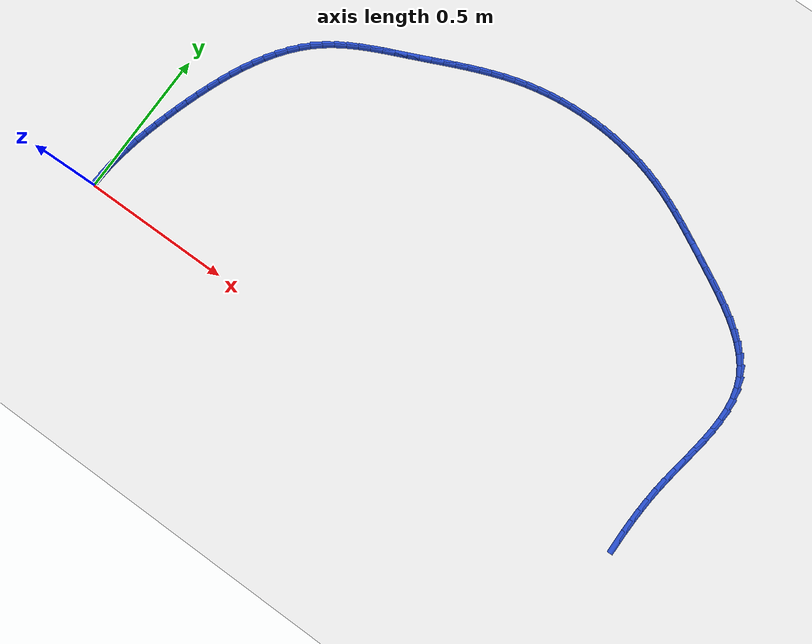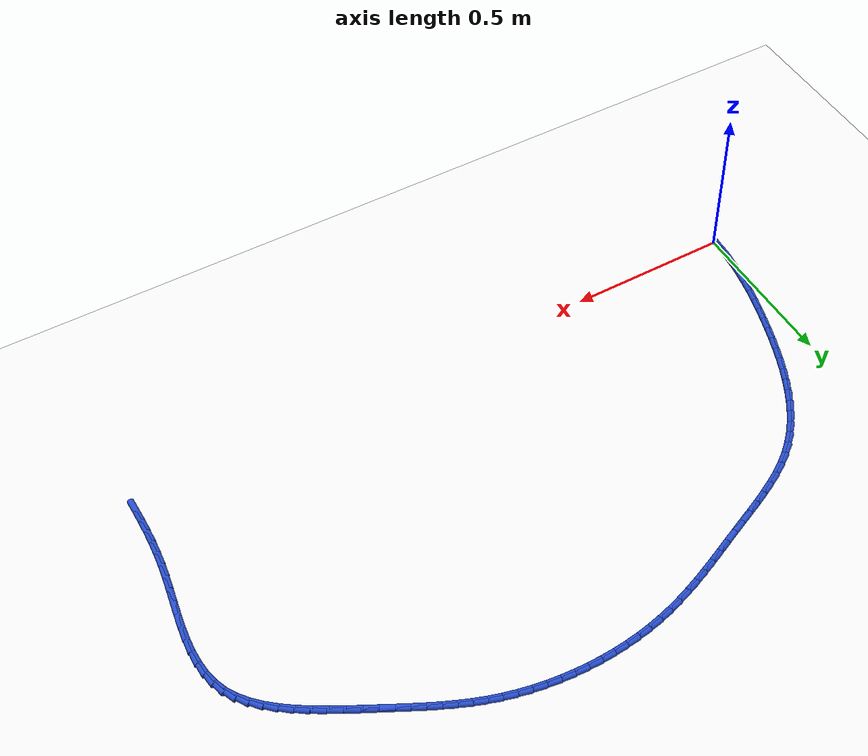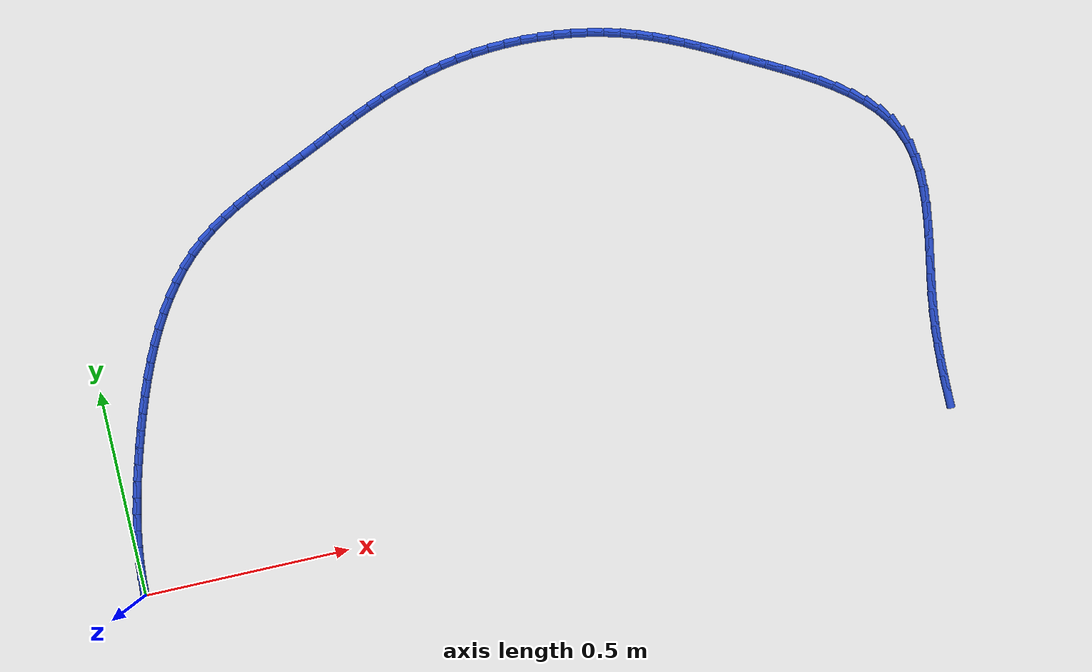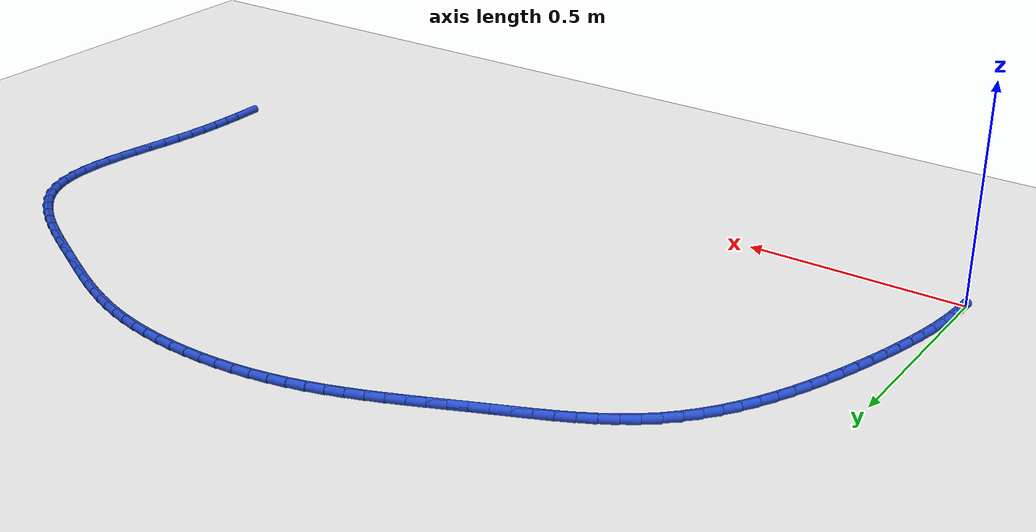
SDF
<sdf version="1.6">
 <world name="default">
  <model name="ground_plane">
   <static>1</static>
   <link name="link">
    <collision name="collision">
     <geometry><plane><normal>0 0 1</normal><size>100 100</size></plane></geometry>
     <surface><friction><ode><mu>100</mu><mu2>50</mu2></ode></friction></surface>
    </collision>
    <visual name="visual">
     <cast_shadows>0</cast_shadows>
     <geometry><plane><normal>0 0 1</normal><size>100 100</size></plane></geometry>
     <material>
      <script><uri>file://media/materials/scripts/gazebo.material</uri><name>Gazebo/WhiteGlow</name></script>
     </material>
    </visual>
   </link>
  </model>
  <model name="line">
   <link name="link_1">
    <pose>0.0013825050643212892 0.03906894730974229 0.01 0 1.57 1.4908828772308236</pose>
    <collision name="collision">
     <geometry><cylinder><radius>0.01</radius><length>0.08</length></cylinder></geometry>
    </collision>
    <visual name="visual">
     <material>
      <script><name>Gazebo/Blue</name><uri>file://media/materials/scripts/gazebo.material</uri></script>
     </material>
     <geometry><cylinder><radius>0.01</radius><length>0.08</length></cylinder></geometry>
    </visual>
   </link>
   <link name="link_2">
    <pose>0.004506165908271949 0.07807375350420086 0.01 0 1.57 1.4498264423140341</pose>
    <collision name="collision">
     <geometry><cylinder><radius>0.01</radius><length>0.08</length></cylinder></geometry>
    </collision>
    <visual name="visual">
     <material>
      <script><name>Gazebo/Blue</name><uri>file://media/materials/scripts/gazebo.material</uri></script>
     </material>
     <geometry><cylinder><radius>0.01</radius><length>0.08</length></cylinder></geometry>
    </visual>
   </link>
   <link name="link_3">
    <pose>0.009242213815881412 0.11703322982333247 0.01 0 1.57 1.4123816714214383</pose>
    <collision name="collision">
     <geometry><cylinder><radius>0.01</radius><length>0.08</length></cylinder></geometry>
    </collision>
    <visual name="visual">
     <material>
      <script><name>Gazebo/Blue</name><uri>file://media/materials/scripts/gazebo.material</uri></script>
     </material>
     <geometry><cylinder><radius>0.01</radius><length>0.08</length></cylinder></geometry>
    </visual>
   </link>
   <link name="link_4">
    <pose>0.015461880071179107 0.1559661875070941 0.01 0 1.57 1.3786067874616756</pose>
    <collision name="collision">
     <geometry><cylinder><radius>0.01</radius><length>0.08</length></cylinder></geometry>
    </collision>
    <visual name="visual">
     <material>
      <script><name>Gazebo/Blue</name><uri>file://media/materials/scripts/gazebo.material</uri></script>
     </material>
     <geometry><cylinder><radius>0.01</radius><length>0.08</length></cylinder></geometry>
    </visual>
   </link>
   <link name="link_5">
    <pose>0.023036395958194462 0.19489143779544235 0.01 0 1.57 1.34850630927568</pose>
    <collision name="collision">
     <geometry><cylinder><radius>0.01</radius><length>0.08</length></cylinder></geometry>
    </collision>
    <visual name="visual">
     <material>
      <script><name>Gazebo/Blue</name><uri>file://media/materials/scripts/gazebo.material</uri></script>
     </material>
     <geometry><cylinder><radius>0.01</radius><length>0.08</length></cylinder></geometry>
    </visual>
   </link>
   <link name="link_6">
    <pose>0.03183699276095692 0.2338277919283341 0.01 0 1.57 1.3220450251470515</pose>
    <collision name="collision">
     <geometry><cylinder><radius>0.01</radius><length>0.08</length></cylinder></geometry>
    </collision>
    <visual name="visual">
     <material>
      <script><name>Gazebo/Blue</name><uri>file://media/materials/scripts/gazebo.material</uri></script>
     </material>
     <geometry><cylinder><radius>0.01</radius><length>0.08</length></cylinder></geometry>
    </visual>
   </link>
   <link name="link_7">
    <pose>0.041734901763495875 0.2727940611457261 0.01 0 1.57 1.2991606508426912</pose>
    <collision name="collision">
     <geometry><cylinder><radius>0.01</radius><length>0.08</length></cylinder></geometry>
    </collision>
    <visual name="visual">
     <material>
      <script><name>Gazebo/Blue</name><uri>file://media/materials/scripts/gazebo.material</uri></script>
     </material>
     <geometry><cylinder><radius>0.01</radius><length>0.08</length></cylinder></geometry>
    </visual>
   </link>
   <link name="link_8">
    <pose>0.052601354249840804 0.3118090566875753 0.01 0 1.57 1.279774628854863</pose>
    <collision name="collision">
     <geometry><cylinder><radius>0.01</radius><length>0.08</length></cylinder></geometry>
    </collision>
    <visual name="visual">
     <material>
      <script><name>Gazebo/Blue</name><uri>file://media/materials/scripts/gazebo.material</uri></script>
     </material>
     <geometry><cylinder><radius>0.01</radius><length>0.08</length></cylinder></geometry>
    </visual>
   </link>
   <link name="link_9">
    <pose>0.06430758150402113 0.35089158979383833 0.01 0 1.57 1.263321220580942</pose>
    <collision name="collision">
     <geometry><cylinder><radius>0.01</radius><length>0.08</length></cylinder></geometry>
    </collision>
    <visual name="visual">
     <material>
      <script><name>Gazebo/Blue</name><uri>file://media/materials/scripts/gazebo.material</uri></script>
     </material>
     <geometry><cylinder><radius>0.01</radius><length>0.08</length></cylinder></geometry>
    </visual>
   </link>
   <link name="link_10">
    <pose>0.07674095066680027 0.3900461623906067 0.01 0 1.57 1.245324803403687</pose>
    <collision name="collision">
     <geometry><cylinder><radius>0.01</radius><length>0.08</length></cylinder></geometry>
    </collision>
    <visual name="visual">
     <material>
      <script><name>Gazebo/Blue</name><uri>file://media/materials/scripts/gazebo.material</uri></script>
     </material>
     <geometry><cylinder><radius>0.01</radius><length>0.08</length></cylinder></geometry>
    </visual>
   </link>
   <link name="link_11">
    <pose>0.08993626492081125 0.4291465297920647 0.01 0 1.57 1.2233031122250573</pose>
    <collision name="collision">
     <geometry><cylinder><radius>0.01</radius><length>0.08</length></cylinder></geometry>
    </collision>
    <visual name="visual">
     <material>
      <script><name>Gazebo/Blue</name><uri>file://media/materials/scripts/gazebo.material</uri></script>
     </material>
     <geometry><cylinder><radius>0.01</radius><length>0.08</length></cylinder></geometry>
    </visual>
   </link>
   <link name="link_12">
    <pose>0.10400731175838522 0.46799640384978175 0.01 0 1.57 1.1970347129776315</pose>
    <collision name="collision">
     <geometry><cylinder><radius>0.01</radius><length>0.08</length></cylinder></geometry>
    </collision>
    <visual name="visual">
     <material>
      <script><name>Gazebo/Blue</name><uri>file://media/materials/scripts/gazebo.material</uri></script>
     </material>
     <geometry><cylinder><radius>0.01</radius><length>0.08</length></cylinder></geometry>
    </visual>
   </link>
   <link name="link_13">
    <pose>0.11906862884791193 0.506398831157519 0.01 0 1.57 1.1662600544415076</pose>
    <collision name="collision">
     <geometry><cylinder><radius>0.01</radius><length>0.08</length></cylinder></geometry>
    </collision>
    <visual name="visual">
     <material>
      <script><name>Gazebo/Blue</name><uri>file://media/materials/scripts/gazebo.material</uri></script>
     </material>
     <geometry><cylinder><radius>0.01</radius><length>0.08</length></cylinder></geometry>
    </visual>
   </link>
   <link name="link_14">
    <pose>0.13523475385778116 0.544156858309038 0.01 0 1.57 1.1306672944568665</pose>
    <collision name="collision">
     <geometry><cylinder><radius>0.01</radius><length>0.08</length></cylinder></geometry>
    </collision>
    <visual name="visual">
     <material>
      <script><name>Gazebo/Blue</name><uri>file://media/materials/scripts/gazebo.material</uri></script>
     </material>
     <geometry><cylinder><radius>0.01</radius><length>0.08</length></cylinder></geometry>
    </visual>
   </link>
   <link name="link_15">
    <pose>0.15262022445638276 0.5810735318981 0.01 0 1.57 1.0899045323295076</pose>
    <collision name="collision">
     <geometry><cylinder><radius>0.01</radius><length>0.08</length></cylinder></geometry>
    </collision>
    <visual name="visual">
     <material>
      <script><name>Gazebo/Blue</name><uri>file://media/materials/scripts/gazebo.material</uri></script>
     </material>
     <geometry><cylinder><radius>0.01</radius><length>0.08</length></cylinder></geometry>
    </visual>
   </link>
   <link name="link_16">
    <pose>0.17133957831210658 0.6169518985184664 0.01 0 1.57 1.0435989721002894</pose>
    <collision name="collision">
     <geometry><cylinder><radius>0.01</radius><length>0.08</length></cylinder></geometry>
    </collision>
    <visual name="visual">
     <material>
      <script><name>Gazebo/Blue</name><uri>file://media/materials/scripts/gazebo.material</uri></script>
     </material>
     <geometry><cylinder><radius>0.01</radius><length>0.08</length></cylinder></geometry>
    </visual>
   </link>
   <link name="link_17">
    <pose>0.19150735309334233 0.6515950047638986 0.01 0 1.57 0.9913863497934005</pose>
    <collision name="collision">
     <geometry><cylinder><radius>0.01</radius><length>0.08</length></cylinder></geometry>
    </collision>
    <visual name="visual">
     <material>
      <script><name>Gazebo/Blue</name><uri>file://media/materials/scripts/gazebo.material</uri></script>
     </material>
     <geometry><cylinder><radius>0.01</radius><length>0.08</length></cylinder></geometry>
    </visual>
   </link>
   <link name="link_18">
    <pose>0.21323808646847983 0.684805897228158 0.01 0 1.57 0.9329540142925298</pose>
    <collision name="collision">
     <geometry><cylinder><radius>0.01</radius><length>0.08</length></cylinder></geometry>
    </collision>
    <visual name="visual">
     <material>
      <script><name>Gazebo/Blue</name><uri>file://media/materials/scripts/gazebo.material</uri></script>
     </material>
     <geometry><cylinder><radius>0.01</radius><length>0.08</length></cylinder></geometry>
    </visual>
   </link>
   <link name="link_19">
    <pose>0.2366463161059089 0.716387622505006 0.01 0 1.57 0.8680999923756387</pose>
    <collision name="collision">
     <geometry><cylinder><radius>0.01</radius><length>0.08</length></cylinder></geometry>
    </collision>
    <visual name="visual">
     <material>
      <script><name>Gazebo/Blue</name><uri>file://media/materials/scripts/gazebo.material</uri></script>
     </material>
     <geometry><cylinder><radius>0.01</radius><length>0.08</length></cylinder></geometry>
    </visual>
   </link>
   <link name="link_20">
    <pose>0.26184657967401925 0.7461432271882036 0.01 0 1.57 0.7968072735817116</pose>
    <collision name="collision">
     <geometry><cylinder><radius>0.01</radius><length>0.08</length></cylinder></geometry>
    </collision>
    <visual name="visual">
     <material>
      <script><name>Gazebo/Blue</name><uri>file://media/materials/scripts/gazebo.material</uri></script>
     </material>
     <geometry><cylinder><radius>0.01</radius><length>0.08</length></cylinder></geometry>
    </visual>
   </link>
   <link name="link_21">
    <pose>0.28895341484120096 0.7738757578715129 0.01 0 1.57 0.7193332785388655</pose>
    <collision name="collision">
     <geometry><cylinder><radius>0.01</radius><length>0.08</length></cylinder></geometry>
    </collision>
    <visual name="visual">
     <material>
      <script><name>Gazebo/Blue</name><uri>file://media/materials/scripts/gazebo.material</uri></script>
     </material>
     <geometry><cylinder><radius>0.01</radius><length>0.08</length></cylinder></geometry>
    </visual>
   </link>
   <link name="link_22">
    <pose>0.31808119799682333 0.7993884625396205 0.01 0 1.57 0.640544846958888</pose>
    <collision name="collision">
     <geometry><cylinder><radius>0.01</radius><length>0.08</length></cylinder></geometry>
    </collision>
    <visual name="visual">
     <material>
      <script><name>Gazebo/Blue</name><uri>file://media/materials/scripts/gazebo.material</uri></script>
     </material>
     <geometry><cylinder><radius>0.01</radius><length>0.08</length></cylinder></geometry>
    </visual>
   </link>
   <link name="link_23">
    <pose>0.34924044235251633 0.8226142842953275 0.01 0 1.57 0.5726735221452041</pose>
    <collision name="collision">
     <geometry><cylinder><radius>0.01</radius><length>0.08</length></cylinder></geometry>
    </collision>
    <visual name="visual">
     <material>
      <script><name>Gazebo/Blue</name><uri>file://media/materials/scripts/gazebo.material</uri></script>
     </material>
     <geometry><cylinder><radius>0.01</radius><length>0.08</length></cylinder></geometry>
    </visual>
   </link>
   <link name="link_24">
    <pose>0.3821593720415288 0.8438386637882926 0.01 0 1.57 0.5176922530987258</pose>
    <collision name="collision">
     <geometry><cylinder><radius>0.01</radius><length>0.08</length></cylinder></geometry>
    </collision>
    <visual name="visual">
     <material>
      <script><name>Gazebo/Blue</name><uri>file://media/materials/scripts/gazebo.material</uri></script>
     </material>
     <geometry><cylinder><radius>0.01</radius><length>0.08</length></cylinder></geometry>
    </visual>
   </link>
   <link name="link_25">
    <pose>0.4165187077536712 0.8634063597522318 0.01 0 1.57 0.47520412315674315</pose>
    <collision name="collision">
     <geometry><cylinder><radius>0.01</radius><length>0.08</length></cylinder></geometry>
    </collision>
    <visual name="visual">
     <material>
      <script><name>Gazebo/Blue</name><uri>file://media/materials/scripts/gazebo.material</uri></script>
     </material>
     <geometry><cylinder><radius>0.01</radius><length>0.08</length></cylinder></geometry>
    </visual>
   </link>
   <link name="link_26">
    <pose>0.45199917017875396 0.8816621309208603 0.01 0 1.57 0.4446733875477434</pose>
    <collision name="collision">
     <geometry><cylinder><radius>0.01</radius><length>0.08</length></cylinder></geometry>
    </collision>
    <visual name="visual">
     <material>
      <script><name>Gazebo/Blue</name><uri>file://media/materials/scripts/gazebo.material</uri></script>
     </material>
     <geometry><cylinder><radius>0.01</radius><length>0.08</length></cylinder></geometry>
    </visual>
   </link>
   <link name="link_27">
    <pose>0.4882814800065874 0.8989507360278943 0.01 0 1.57 0.4256101290940283</pose>
    <collision name="collision">
     <geometry><cylinder><radius>0.01</radius><length>0.08</length></cylinder></geometry>
    </collision>
    <visual name="visual">
     <material>
      <script><name>Gazebo/Blue</name><uri>file://media/materials/scripts/gazebo.material</uri></script>
     </material>
     <geometry><cylinder><radius>0.01</radius><length>0.08</length></cylinder></geometry>
    </visual>
   </link>
   <link name="link_28">
    <pose>0.5250463579269822 0.9156169338070489 0.01 0 1.57 0.4176821834317613</pose>
    <collision name="collision">
     <geometry><cylinder><radius>0.01</radius><length>0.08</length></cylinder></geometry>
    </collision>
    <visual name="visual">
     <material>
      <script><name>Gazebo/Blue</name><uri>file://media/materials/scripts/gazebo.material</uri></script>
     </material>
     <geometry><cylinder><radius>0.01</radius><length>0.08</length></cylinder></geometry>
    </visual>
   </link>
   <link name="link_29">
    <pose>0.5619745246297484 0.9320054829920398 0.01 0 1.57 0.4203912868727868</pose>
    <collision name="collision">
     <geometry><cylinder><radius>0.01</radius><length>0.08</length></cylinder></geometry>
    </collision>
    <visual name="visual">
     <material>
      <script><name>Gazebo/Blue</name><uri>file://media/materials/scripts/gazebo.material</uri></script>
     </material>
     <geometry><cylinder><radius>0.01</radius><length>0.08</length></cylinder></geometry>
    </visual>
   </link>
   <link name="link_30">
    <pose>0.5987564832216699 0.9484485614264324 0.01 0 1.57 0.4255999580675025</pose>
    <collision name="collision">
     <geometry><cylinder><radius>0.01</radius><length>0.08</length></cylinder></geometry>
    </collision>
    <visual name="visual">
     <material>
      <script><name>Gazebo/Blue</name><uri>file://media/materials/scripts/gazebo.material</uri></script>
     </material>
     <geometry><cylinder><radius>0.01</radius><length>0.08</length></cylinder></geometry>
    </visual>
   </link>
   <link name="link_31">
    <pose>0.6352913571693464 0.9650100462018243 0.01 0 1.57 0.42542437116408216</pose>
    <collision name="collision">
     <geometry><cylinder><radius>0.01</radius><length>0.08</length></cylinder></geometry>
    </collision>
    <visual name="visual">
     <material>
      <script><name>Gazebo/Blue</name><uri>file://media/materials/scripts/gazebo.material</uri></script>
     </material>
     <geometry><cylinder><radius>0.01</radius><length>0.08</length></cylinder></geometry>
    </visual>
   </link>
   <link name="link_32">
    <pose>0.671678179160152 0.9814967168077061 0.01 0 1.57 0.4194778309859588</pose>
    <collision name="collision">
     <geometry><cylinder><radius>0.01</radius><length>0.08</length></cylinder></geometry>
    </collision>
    <visual name="visual">
     <material>
      <script><name>Gazebo/Blue</name><uri>file://media/materials/scripts/gazebo.material</uri></script>
     </material>
     <geometry><cylinder><radius>0.01</radius><length>0.08</length></cylinder></geometry>
    </visual>
   </link>
   <link name="link_33">
    <pose>0.7080240210769684 0.9977050137513073 0.01 0 1.57 0.40770161124175586</pose>
    <collision name="collision">
     <geometry><cylinder><radius>0.01</radius><length>0.08</length></cylinder></geometry>
    </collision>
    <visual name="visual">
     <material>
      <script><name>Gazebo/Blue</name><uri>file://media/materials/scripts/gazebo.material</uri></script>
     </material>
     <geometry><cylinder><radius>0.01</radius><length>0.08</length></cylinder></geometry>
    </visual>
   </link>
   <link name="link_34">
    <pose>0.7444359548026763 1.013431377539857 0.01 0 1.57 0.3900558137274472</pose>
    <collision name="collision">
     <geometry><cylinder><radius>0.01</radius><length>0.08</length></cylinder></geometry>
    </collision>
    <visual name="visual">
     <material>
      <script><name>Gazebo/Blue</name><uri>file://media/materials/scripts/gazebo.material</uri></script>
     </material>
     <geometry><cylinder><radius>0.01</radius><length>0.08</length></cylinder></geometry>
    </visual>
   </link>
   <link name="link_35">
    <pose>0.7810210522201568 1.0284722486805846 0.01 0 1.57 0.3665319929024972</pose>
    <collision name="collision">
     <geometry><cylinder><radius>0.01</radius><length>0.08</length></cylinder></geometry>
    </collision>
    <visual name="visual">
     <material>
      <script><name>Gazebo/Blue</name><uri>file://media/materials/scripts/gazebo.material</uri></script>
     </material>
     <geometry><cylinder><radius>0.01</radius><length>0.08</length></cylinder></geometry>
    </visual>
   </link>
   <link name="link_36">
    <pose>0.8178863852122915 1.042624067680719 0.01 0 1.57 0.3371717475668444</pose>
    <collision name="collision">
     <geometry><cylinder><radius>0.01</radius><length>0.08</length></cylinder></geometry>
    </collision>
    <visual name="visual">
     <material>
      <script><name>Gazebo/Blue</name><uri>file://media/materials/scripts/gazebo.material</uri></script>
     </material>
     <geometry><cylinder><radius>0.01</radius><length>0.08</length></cylinder></geometry>
    </visual>
   </link>
   <link name="link_37">
    <pose>0.8551390256619612 1.05568327504749 0.01 0 1.57 0.3020904434956613</pose>
    <collision name="collision">
     <geometry><cylinder><radius>0.01</radius><length>0.08</length></cylinder></geometry>
    </collision>
    <visual name="visual">
     <material>
      <script><name>Gazebo/Blue</name><uri>file://media/materials/scripts/gazebo.material</uri></script>
     </material>
     <geometry><cylinder><radius>0.01</radius><length>0.08</length></cylinder></geometry>
    </visual>
   </link>
   <link name="link_38">
    <pose>0.8928860454520464 1.067446311288126 0.01 0 1.57 0.2615043488212305</pose>
    <collision name="collision">
     <geometry><cylinder><radius>0.01</radius><length>0.08</length></cylinder></geometry>
    </collision>
    <visual name="visual">
     <material>
      <script><name>Gazebo/Blue</name><uri>file://media/materials/scripts/gazebo.material</uri></script>
     </material>
     <geometry><cylinder><radius>0.01</radius><length>0.08</length></cylinder></geometry>
    </visual>
   </link>
   <link name="link_39">
    <pose>0.9312345070458207 1.077709624940949 0.01 0 1.57 0.2169953253717377</pose>
    <collision name="collision">
     <geometry><cylinder><radius>0.01</radius><length>0.08</length></cylinder></geometry>
    </collision>
    <visual name="visual">
     <material>
      <script><name>Gazebo/Blue</name><uri>file://media/materials/scripts/gazebo.material</uri></script>
     </material>
     <geometry><cylinder><radius>0.01</radius><length>0.08</length></cylinder></geometry>
    </visual>
   </link>
   <link name="link_40">
    <pose>0.9702442089245338 1.086309961479969 0.01 0 1.57 0.17281984940199646</pose>
    <collision name="collision">
     <geometry><cylinder><radius>0.01</radius><length>0.08</length></cylinder></geometry>
    </collision>
    <visual name="visual">
     <material>
      <script><name>Gazebo/Blue</name><uri>file://media/materials/scripts/gazebo.material</uri></script>
     </material>
     <geometry><cylinder><radius>0.01</radius><length>0.08</length></cylinder></geometry>
    </visual>
   </link>
   <link name="link_41">
    <pose>1.0098178749165594 1.0932179871136565 0.01 0 1.57 0.12959836551009693</pose>
    <collision name="collision">
     <geometry><cylinder><radius>0.01</radius><length>0.08</length></cylinder></geometry>
    </collision>
    <visual name="visual">
     <material>
      <script><name>Gazebo/Blue</name><uri>file://media/materials/scripts/gazebo.material</uri></script>
     </material>
     <geometry><cylinder><radius>0.01</radius><length>0.08</length></cylinder></geometry>
    </visual>
   </link>
   <link name="link_42">
    <pose>1.0498256403466943 1.0984321527773817 0.01 0 1.57 0.08706738772862936</pose>
    <collision name="collision">
     <geometry><cylinder><radius>0.01</radius><length>0.08</length></cylinder></geometry>
    </collision>
    <visual name="visual">
     <material>
      <script><name>Gazebo/Blue</name><uri>file://media/materials/scripts/gazebo.material</uri></script>
     </material>
     <geometry><cylinder><radius>0.01</radius><length>0.08</length></cylinder></geometry>
    </visual>
   </link>
   <link name="link_43">
    <pose>1.0901376405397374 1.1019509094065185 0.01 0 1.57 0.04496748940232887</pose>
    <collision name="collision">
     <geometry><cylinder><radius>0.01</radius><length>0.08</length></cylinder></geometry>
    </collision>
    <visual name="visual">
     <material>
      <script><name>Gazebo/Blue</name><uri>file://media/materials/scripts/gazebo.material</uri></script>
     </material>
     <geometry><cylinder><radius>0.01</radius><length>0.08</length></cylinder></geometry>
    </visual>
   </link>
   <link name="link_44">
    <pose>1.1306240108204861 1.1037727079364377 0.01 0 1.57 0.003041902837933673</pose>
    <collision name="collision">
     <geometry><cylinder><radius>0.01</radius><length>0.08</length></cylinder></geometry>
    </collision>
    <visual name="visual">
     <material>
      <script><name>Gazebo/Blue</name><uri>file://media/materials/scripts/gazebo.material</uri></script>
     </material>
     <geometry><cylinder><radius>0.01</radius><length>0.08</length></cylinder></geometry>
    </visual>
   </link>
   <link name="link_45">
    <pose>1.171154886513739 1.103895999302512 0.01 0 1.57 -0.038965179030784</pose>
    <collision name="collision">
     <geometry><cylinder><radius>0.01</radius><length>0.08</length></cylinder></geometry>
    </collision>
    <visual name="visual">
     <material>
      <script><name>Gazebo/Blue</name><uri>file://media/materials/scripts/gazebo.material</uri></script>
     </material>
     <geometry><cylinder><radius>0.01</radius><length>0.08</length></cylinder></geometry>
    </visual>
   </link>
   <link name="link_46">
    <pose>1.2116004029442922 1.1023192344401131 0.01 0 1.57 -0.08131042333278853</pose>
    <collision name="collision">
     <geometry><cylinder><radius>0.01</radius><length>0.08</length></cylinder></geometry>
    </collision>
    <visual name="visual">
     <material>
      <script><name>Gazebo/Blue</name><uri>file://media/materials/scripts/gazebo.material</uri></script>
     </material>
     <geometry><cylinder><radius>0.01</radius><length>0.08</length></cylinder></geometry>
    </visual>
   </link>
   <link name="link_47">
    <pose>1.2518306954369451 1.099040864284613 0.01 0 1.57 -0.12425313855654954</pose>
    <collision name="collision">
     <geometry><cylinder><radius>0.01</radius><length>0.08</length></cylinder></geometry>
    </collision>
    <visual name="visual">
     <material>
      <script><name>Gazebo/Blue</name><uri>file://media/materials/scripts/gazebo.material</uri></script>
     </material>
     <geometry><cylinder><radius>0.01</radius><length>0.08</length></cylinder></geometry>
    </visual>
   </link>
   <link name="link_48">
    <pose>1.2917158993164943 1.0940593397713836 0.01 0 1.57 -0.1680568477869703</pose>
    <collision name="collision">
     <geometry><cylinder><radius>0.01</radius><length>0.08</length></cylinder></geometry>
    </collision>
    <visual name="visual">
     <material>
      <script><name>Gazebo/Blue</name><uri>file://media/materials/scripts/gazebo.material</uri></script>
     </material>
     <geometry><cylinder><radius>0.01</radius><length>0.08</length></cylinder></geometry>
    </visual>
   </link>
   <link name="link_49">
    <pose>1.3311261499077385 1.0873731118357974 0.01 0 1.57 -0.2129904571610945</pose>
    <collision name="collision">
     <geometry><cylinder><radius>0.01</radius><length>0.08</length></cylinder></geometry>
    </collision>
    <visual name="visual">
     <material>
      <script><name>Gazebo/Blue</name><uri>file://media/materials/scripts/gazebo.material</uri></script>
     </material>
     <geometry><cylinder><radius>0.01</radius><length>0.08</length></cylinder></geometry>
    </visual>
   </link>
   <link name="link_50">
    <pose>1.3699315825354756 1.0789806314132264 0.01 0 1.57 -0.25932877304138785</pose>
    <collision name="collision">
     <geometry><cylinder><radius>0.01</radius><length>0.08</length></cylinder></geometry>
    </collision>
    <visual name="visual">
     <material>
      <script><name>Gazebo/Blue</name><uri>file://media/materials/scripts/gazebo.material</uri></script>
     </material>
     <geometry><cylinder><radius>0.01</radius><length>0.08</length></cylinder></geometry>
    </visual>
   </link>
   <link name="link_51">
    <pose>1.4080023325245028 1.0688803494390424 0.01 0 1.57 -0.3070932277901556</pose>
    <collision name="collision">
     <geometry><cylinder><radius>0.01</radius><length>0.08</length></cylinder></geometry>
    </collision>
    <visual name="visual">
     <material>
      <script><name>Gazebo/Blue</name><uri>file://media/materials/scripts/gazebo.material</uri></script>
     </material>
     <geometry><cylinder><radius>0.01</radius><length>0.08</length></cylinder></geometry>
    </visual>
   </link>
   <link name="link_52">
    <pose>1.4452216622945886 1.057077153023726 0.01 0 1.57 -0.3525371537069398</pose>
    <collision name="collision">
     <geometry><cylinder><radius>0.01</radius><length>0.08</length></cylinder></geometry>
    </collision>
    <visual name="visual">
     <material>
      <script><name>Gazebo/Blue</name><uri>file://media/materials/scripts/gazebo.material</uri></script>
     </material>
     <geometry><cylinder><radius>0.01</radius><length>0.08</length></cylinder></geometry>
    </visual>
   </link>
   <link name="link_53">
    <pose>1.4816641480213903 1.0436697298357969 0.01 0 1.57 -0.39217549380556954</pose>
    <collision name="collision">
     <geometry><cylinder><radius>0.01</radius><length>0.08</length></cylinder></geometry>
    </collision>
    <visual name="visual">
     <material>
      <script><name>Gazebo/Blue</name><uri>file://media/materials/scripts/gazebo.material</uri></script>
     </material>
     <geometry><cylinder><radius>0.01</radius><length>0.08</length></cylinder></geometry>
    </visual>
   </link>
   <link name="link_54">
    <pose>1.5175490708155777 1.0288277159373782 0.01 0 1.57 -0.4253684738614518</pose>
    <collision name="collision">
     <geometry><cylinder><radius>0.01</radius><length>0.08</length></cylinder></geometry>
    </collision>
    <visual name="visual">
     <material>
      <script><name>Gazebo/Blue</name><uri>file://media/materials/scripts/gazebo.material</uri></script>
     </material>
     <geometry><cylinder><radius>0.01</radius><length>0.08</length></cylinder></geometry>
    </visual>
   </link>
   <link name="link_55">
    <pose>1.5530992887042487 1.0127225011419412 0.01 0 1.57 -0.45179084007981357</pose>
    <collision name="collision">
     <geometry><cylinder><radius>0.01</radius><length>0.08</length></cylinder></geometry>
    </collision>
    <visual name="visual">
     <material>
      <script><name>Gazebo/Blue</name><uri>file://media/materials/scripts/gazebo.material</uri></script>
     </material>
     <geometry><cylinder><radius>0.01</radius><length>0.08</length></cylinder></geometry>
    </visual>
   </link>
   <link name="link_56">
    <pose>1.5885376597144985 0.9955254752629552 0.01 0 1.57 -0.4713311749989829</pose>
    <collision name="collision">
     <geometry><cylinder><radius>0.01</radius><length>0.08</length></cylinder></geometry>
    </collision>
    <visual name="visual">
     <material>
      <script><name>Gazebo/Blue</name><uri>file://media/materials/scripts/gazebo.material</uri></script>
     </material>
     <geometry><cylinder><radius>0.01</radius><length>0.08</length></cylinder></geometry>
    </visual>
   </link>
   <link name="link_57">
    <pose>1.6240870418734241 0.9774080281138912 0.01 0 1.57 -0.4840535263988768</pose>
    <collision name="collision">
     <geometry><cylinder><radius>0.01</radius><length>0.08</length></cylinder></geometry>
    </collision>
    <visual name="visual">
     <material>
      <script><name>Gazebo/Blue</name><uri>file://media/materials/scripts/gazebo.material</uri></script>
     </material>
     <geometry><cylinder><radius>0.01</radius><length>0.08</length></cylinder></geometry>
    </visual>
   </link>
   <link name="link_58">
    <pose>1.6599702932081228 0.9585415495082187 0.01 0 1.57 -0.4901595264899199</pose>
    <collision name="collision">
     <geometry><cylinder><radius>0.01</radius><length>0.08</length></cylinder></geometry>
    </collision>
    <visual name="visual">
     <material>
      <script><name>Gazebo/Blue</name><uri>file://media/materials/scripts/gazebo.material</uri></script>
     </material>
     <geometry><cylinder><radius>0.01</radius><length>0.08</length></cylinder></geometry>
    </visual>
   </link>
   <link name="link_59">
    <pose>1.6964102717456917 0.9390974292594089 0.01 0 1.57 -0.4907636424211257</pose>
    <collision name="collision">
     <geometry><cylinder><radius>0.01</radius><length>0.08</length></cylinder></geometry>
    </collision>
    <visual name="visual">
     <material>
      <script><name>Gazebo/Blue</name><uri>file://media/materials/scripts/gazebo.material</uri></script>
     </material>
     <geometry><cylinder><radius>0.01</radius><length>0.08</length></cylinder></geometry>
    </visual>
   </link>
   <link name="link_60">
    <pose>1.7335895550634075 0.919229956176513 0.01 0 1.57 -0.4958115956384678</pose>
    <collision name="collision">
     <geometry><cylinder><radius>0.01</radius><length>0.08</length></cylinder></geometry>
    </collision>
    <visual name="visual">
     <material>
      <script><name>Gazebo/Blue</name><uri>file://media/materials/scripts/gazebo.material</uri></script>
     </material>
     <geometry><cylinder><radius>0.01</radius><length>0.08</length></cylinder></geometry>
    </visual>
   </link>
   <link name="link_61">
    <pose>1.7712023489460587 0.8988860815582352 0.01 0 1.57 -0.5116781465560379</pose>
    <collision name="collision">
     <geometry><cylinder><radius>0.01</radius><length>0.08</length></cylinder></geometry>
    </collision>
    <visual name="visual">
     <material>
      <script><name>Gazebo/Blue</name><uri>file://media/materials/scripts/gazebo.material</uri></script>
     </material>
     <geometry><cylinder><radius>0.01</radius><length>0.08</length></cylinder></geometry>
    </visual>
   </link>
   <link name="link_62">
    <pose>1.8086179602419967 0.8778748213482268 0.01 0 1.57 -0.5388704966634605</pose>
    <collision name="collision">
     <geometry><cylinder><radius>0.01</radius><length>0.08</length></cylinder></geometry>
    </collision>
    <visual name="visual">
     <material>
      <script><name>Gazebo/Blue</name><uri>file://media/materials/scripts/gazebo.material</uri></script>
     </material>
     <geometry><cylinder><radius>0.01</radius><length>0.08</length></cylinder></geometry>
    </visual>
   </link>
   <link name="link_63">
    <pose>1.8451998220121644 0.8560026977825225 0.01 0 1.57 -0.5784538508213279</pose>
    <collision name="collision">
     <geometry><cylinder><radius>0.01</radius><length>0.08</length></cylinder></geometry>
    </collision>
    <visual name="visual">
     <material>
      <script><name>Gazebo/Blue</name><uri>file://media/materials/scripts/gazebo.material</uri></script>
     </material>
     <geometry><cylinder><radius>0.01</radius><length>0.08</length></cylinder></geometry>
    </visual>
   </link>
   <link name="link_64">
    <pose>1.8803113673175027 0.8330762330971592 0.01 0 1.57 -0.632174544895152</pose>
    <collision name="collision">
     <geometry><cylinder><radius>0.01</radius><length>0.08</length></cylinder></geometry>
    </collision>
    <visual name="visual">
     <material>
      <script><name>Gazebo/Blue</name><uri>file://media/materials/scripts/gazebo.material</uri></script>
     </material>
     <geometry><cylinder><radius>0.01</radius><length>0.08</length></cylinder></geometry>
    </visual>
   </link>
   <link name="link_65">
    <pose>1.9133160292189546 0.8089019495281721 0.01 0 1.57 -0.7024483147444581</pose>
    <collision name="collision">
     <geometry><cylinder><radius>0.01</radius><length>0.08</length></cylinder></geometry>
    </collision>
    <visual name="visual">
     <material>
      <script><name>Gazebo/Blue</name><uri>file://media/materials/scripts/gazebo.material</uri></script>
     </material>
     <geometry><cylinder><radius>0.01</radius><length>0.08</length></cylinder></geometry>
    </visual>
   </link>
   <link name="link_66">
    <pose>1.9435772407774625 0.7832863693115967 0.01 0 1.57 -0.79221774710163</pose>
    <collision name="collision">
     <geometry><cylinder><radius>0.01</radius><length>0.08</length></cylinder></geometry>
    </collision>
    <visual name="visual">
     <material>
      <script><name>Gazebo/Blue</name><uri>file://media/materials/scripts/gazebo.material</uri></script>
     </material>
     <geometry><cylinder><radius>0.01</radius><length>0.08</length></cylinder></geometry>
    </visual>
   </link>
   <link name="link_67">
    <pose>1.9704584350539673 0.7560360146834694 0.01 0 1.57 -0.9044628898342737</pose>
    <collision name="collision">
     <geometry><cylinder><radius>0.01</radius><length>0.08</length></cylinder></geometry>
    </collision>
    <visual name="visual">
     <material>
      <script><name>Gazebo/Blue</name><uri>file://media/materials/scripts/gazebo.material</uri></script>
     </material>
     <geometry><cylinder><radius>0.01</radius><length>0.08</length></cylinder></geometry>
    </visual>
   </link>
   <link name="link_68">
    <pose>1.9933230451094133 0.7269574078798254 0.01 0 1.57 -1.0410538635224278</pose>
    <collision name="collision">
     <geometry><cylinder><radius>0.01</radius><length>0.08</length></cylinder></geometry>
    </collision>
    <visual name="visual">
     <material>
      <script><name>Gazebo/Blue</name><uri>file://media/materials/scripts/gazebo.material</uri></script>
     </material>
     <geometry><cylinder><radius>0.01</radius><length>0.08</length></cylinder></geometry>
    </visual>
   </link>
   <link name="link_69">
    <pose>2.011534504004741 0.6958570711367009 0.01 0 1.57 -1.196380597258871</pose>
    <collision name="collision">
     <geometry><cylinder><radius>0.01</radius><length>0.08</length></cylinder></geometry>
    </collision>
    <visual name="visual">
     <material>
      <script><name>Gazebo/Blue</name><uri>file://media/materials/scripts/gazebo.material</uri></script>
     </material>
     <geometry><cylinder><radius>0.01</radius><length>0.08</length></cylinder></geometry>
    </visual>
   </link>
   <link name="link_70">
    <pose>2.0246055262354012 0.6625934041407806 0.01 0 1.57 -1.3402567308373683</pose>
    <collision name="collision">
     <geometry><cylinder><radius>0.01</radius><length>0.08</length></cylinder></geometry>
    </collision>
    <visual name="visual">
     <material>
      <script><name>Gazebo/Blue</name><uri>file://media/materials/scripts/gazebo.material</uri></script>
     </material>
     <geometry><cylinder><radius>0.01</radius><length>0.08</length></cylinder></geometry>
    </visual>
   </link>
   <link name="link_71">
    <pose>2.032885666938521 0.6273156207662773 0.01 0 1.57 -1.4597518294533733</pose>
    <collision name="collision">
     <geometry><cylinder><radius>0.01</radius><length>0.08</length></cylinder></geometry>
    </collision>
    <visual name="visual">
     <material>
      <script><name>Gazebo/Blue</name><uri>file://media/materials/scripts/gazebo.material</uri></script>
     </material>
     <geometry><cylinder><radius>0.01</radius><length>0.08</length></cylinder></geometry>
    </visual>
   </link>
   <link name="link_72">
    <pose>2.037015902456795 0.5902742079576954 0.01 0 1.57 -1.5546749816541776</pose>
    <collision name="collision">
     <geometry><cylinder><radius>0.01</radius><length>0.08</length></cylinder></geometry>
    </collision>
    <visual name="visual">
     <material>
      <script><name>Gazebo/Blue</name><uri>file://media/materials/scripts/gazebo.material</uri></script>
     </material>
     <geometry><cylinder><radius>0.01</radius><length>0.08</length></cylinder></geometry>
    </visual>
   </link>
   <link name="link_73">
    <pose>2.037637505938731 0.5517197558038367 0.01 0 1.57 1.5144539579037297</pose>
    <collision name="collision">
     <geometry><cylinder><radius>0.01</radius><length>0.08</length></cylinder></geometry>
    </collision>
    <visual name="visual">
     <material>
      <script><name>Gazebo/Blue</name><uri>file://media/materials/scripts/gazebo.material</uri></script>
     </material>
     <geometry><cylinder><radius>0.01</radius><length>0.08</length></cylinder></geometry>
    </visual>
   </link>
   <link name="link_74">
    <pose>2.0353917505328405 0.5119028543935045 0.01 0 1.57 1.4617044236143706</pose>
    <collision name="collision">
     <geometry><cylinder><radius>0.01</radius><length>0.08</length></cylinder></geometry>
    </collision>
    <visual name="visual">
     <material>
      <script><name>Gazebo/Blue</name><uri>file://media/materials/scripts/gazebo.material</uri></script>
     </material>
     <geometry><cylinder><radius>0.01</radius><length>0.08</length></cylinder></geometry>
    </visual>
   </link>
   <link name="link_75">
    <pose>2.030919909387632 0.47107409381550225 0.01 0 1.57 1.4261853415969281</pose>
    <collision name="collision">
     <geometry><cylinder><radius>0.01</radius><length>0.08</length></cylinder></geometry>
    </collision>
    <visual name="visual">
     <material>
      <script><name>Gazebo/Blue</name><uri>file://media/materials/scripts/gazebo.material</uri></script>
     </material>
     <geometry><cylinder><radius>0.01</radius><length>0.08</length></cylinder></geometry>
    </visual>
   </link>
   <link name="link_76">
    <pose>2.0248632556516166 0.42948406415863283 0.01 0 1.57 1.40603111574253</pose>
    <collision name="collision">
     <geometry><cylinder><radius>0.01</radius><length>0.08</length></cylinder></geometry>
    </collision>
    <visual name="visual">
     <material>
      <script><name>Gazebo/Blue</name><uri>file://media/materials/scripts/gazebo.material</uri></script>
     </material>
     <geometry><cylinder><radius>0.01</radius><length>0.08</length></cylinder></geometry>
    </visual>
   </link>
   <link name="link_77">
    <pose>2.017863062473303 0.3873833555116989 0.01 0 1.57 1.4000869364141282</pose>
    <collision name="collision">
     <geometry><cylinder><radius>0.01</radius><length>0.08</length></cylinder></geometry>
    </collision>
    <visual name="visual">
     <material>
      <script><name>Gazebo/Blue</name><uri>file://media/materials/scripts/gazebo.material</uri></script>
     </material>
     <geometry><cylinder><radius>0.01</radius><length>0.08</length></cylinder></geometry>
    </visual>
   </link>
   <link name="link_78">
    <pose>2.010560603001202 0.34502255796350395 0.01 0 1.57 1.4079049732465845</pose>
    <collision name="collision">
     <geometry><cylinder><radius>0.01</radius><length>0.08</length></cylinder></geometry>
    </collision>
    <visual name="visual">
     <material>
      <script><name>Gazebo/Blue</name><uri>file://media/materials/scripts/gazebo.material</uri></script>
     </material>
     <geometry><cylinder><radius>0.01</radius><length>0.08</length></cylinder></geometry>
    </visual>
   </link>
   <link name="link_79">
    <pose>2.003597150383823 0.30265226160285075 0.01 0 1.57 1.429719966574659</pose>
    <collision name="collision">
     <geometry><cylinder><radius>0.01</radius><length>0.08</length></cylinder></geometry>
    </collision>
    <visual name="visual">
     <material>
      <script><name>Gazebo/Blue</name><uri>file://media/materials/scripts/gazebo.material</uri></script>
     </material>
     <geometry><cylinder><radius>0.01</radius><length>0.08</length></cylinder></geometry>
    </visual>
   </link>
   <link name="link_80">
    <pose>1.9976139687807322 0.2605230535309892 0.01 0 1.57 1.4627930545748875</pose>
    <collision name="collision">
     <geometry><cylinder><radius>0.01</radius><length>0.08</length></cylinder></geometry>
    </collision>
    <visual name="visual">
     <material>
      <script><name>Gazebo/Blue</name><uri>file://media/materials/scripts/gazebo.material</uri></script>
     </material>
     <geometry><cylinder><radius>0.01</radius><length>0.08</length></cylinder></geometry>
    </visual>
   </link>
   <link name="link_81">
    <pose>1.993093695386927 0.2188327997982529 0.01 0 1.57 1.4948596407253267</pose>
    <collision name="collision">
     <geometry><cylinder><radius>0.01</radius><length>0.08</length></cylinder></geometry>
    </collision>
    <visual name="visual">
     <material>
      <script><name>Gazebo/Blue</name><uri>file://media/materials/scripts/gazebo.material</uri></script>
     </material>
     <geometry><cylinder><radius>0.01</radius><length>0.08</length></cylinder></geometry>
    </visual>
   </link>
   <link name="link_82">
    <pose>1.989955991823093 0.17759225662785066 0.01 0 1.57 1.522811784377706</pose>
    <collision name="collision">
     <geometry><cylinder><radius>0.01</radius><length>0.08</length></cylinder></geometry>
    </collision>
    <visual name="visual">
     <material>
      <script><name>Gazebo/Blue</name><uri>file://media/materials/scripts/gazebo.material</uri></script>
     </material>
     <geometry><cylinder><radius>0.01</radius><length>0.08</length></cylinder></geometry>
    </visual>
   </link>
   <link name="link_83">
    <pose>1.987995682830694 0.13677068962074337 0.01 0 1.57 1.546363682410482</pose>
    <collision name="collision">
     <geometry><cylinder><radius>0.01</radius><length>0.08</length></cylinder></geometry>
    </collision>
    <visual name="visual">
     <material>
      <script><name>Gazebo/Blue</name><uri>file://media/materials/scripts/gazebo.material</uri></script>
     </material>
     <geometry><cylinder><radius>0.01</radius><length>0.08</length></cylinder></geometry>
    </visual>
   </link>
   <link name="link_84">
    <pose>1.9870075931511986 0.09633736437789064 0.01 0 1.57 1.5652806967899202</pose>
    <collision name="collision">
     <geometry><cylinder><radius>0.01</radius><length>0.08</length></cylinder></geometry>
    </collision>
    <visual name="visual">
     <material>
      <script><name>Gazebo/Blue</name><uri>file://media/materials/scripts/gazebo.material</uri></script>
     </material>
     <geometry><cylinder><radius>0.01</radius><length>0.08</length></cylinder></geometry>
    </visual>
   </link>
   <link name="link_85">
    <pose>1.9867865475260713 0.056261546500253376 0.01 0 1.57 -1.5622221630783153</pose>
    <collision name="collision">
     <geometry><cylinder><radius>0.01</radius><length>0.08</length></cylinder></geometry>
    </collision>
    <visual name="visual">
     <material>
      <script><name>Gazebo/Blue</name><uri>file://media/materials/scripts/gazebo.material</uri></script>
     </material>
     <geometry><cylinder><radius>0.01</radius><length>0.08</length></cylinder></geometry>
    </visual>
   </link>
   <link name="link_171">
    <pose>0.0014144993570846288 0.0390599935004442 0.01 0 1.57 1.5345986374687712</pose>
    <collision name="collision">
     <geometry><cylinder><radius>0.01</radius><length>0.08</length></cylinder></geometry>
    </collision>
    <visual name="visual">
     <material>
      <script><name>Gazebo/Blue</name><uri>file://media/materials/scripts/gazebo.material</uri></script>
     </material>
     <geometry><cylinder><radius>0.01</radius><length>0.08</length></cylinder></geometry>
    </visual>
   </link>
  </model>
 </world>
</sdf>
